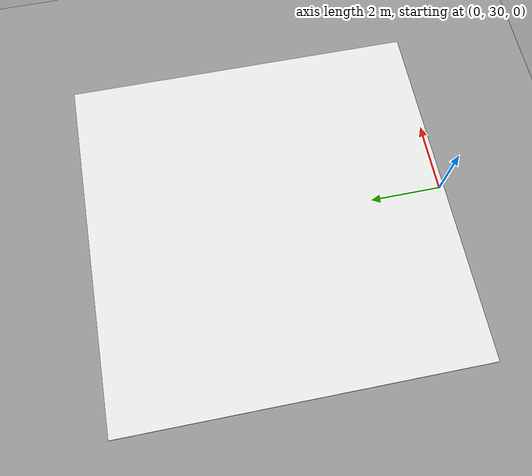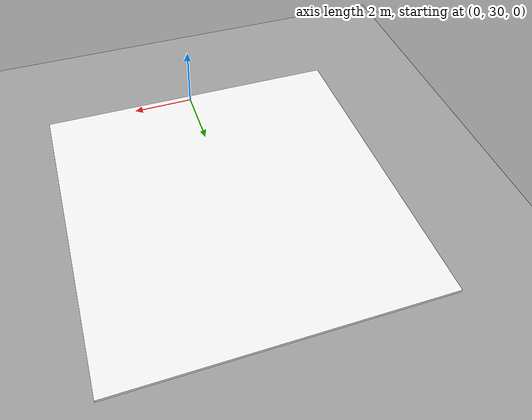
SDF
<sdf version="1.6">
 <world name="default">
  <light name="sun" type="directional">
   <pose>0 0 10 0 -0 0</pose>
   <diffuse>0.8 0.8 0.8 1</diffuse>
   <specular>0.2 0.2 0.2 1</specular>
   <attenuation>
    <range>1000</range>
    <constant>0.9</constant>
    <linear>0.01</linear>
    <quadratic>0.001</quadratic>
   </attenuation>
   <direction>-0.5 0.1 -0.9</direction>
  </light>
  <gravity>0 0 -9.8</gravity>
  <magnetic_field>6e-06 2.3e-05 -4.2e-05</magnetic_field>
  <atmosphere type="adiabatic"/>
  <physics name="default_physics" default="0" type="ode">
   <max_step_size>0.001</max_step_size>
   <real_time_factor>1</real_time_factor>
   <real_time_update_rate>1000</real_time_update_rate>
  </physics>
  <scene><ambient>0.4 0.4 0.4 1</ambient><background>0.7 0.7 0.7 1</background><shadows>1</shadows></scene>
  <spherical_coordinates>
   <surface_model>EARTH_WGS84</surface_model>
   <latitude_deg>0</latitude_deg>
   <longitude_deg>0</longitude_deg>
   <elevation>0</elevation>
   <heading_deg>0</heading_deg>
  </spherical_coordinates>
  <model name="Arena100x60">
   <link name="link_0">
    <pose>-0.324939 -17.8056 -0.257254 0 -0 0</pose>
    <inertial>
     <mass>100</mass>
     <inertia>
      <ixx>0.166667</ixx>
      <ixy>0</ixy>
      <ixz>0</ixz>
      <iyy>0.166667</iyy>
      <iyz>0</iyz>
      <izz>0.166667</izz>
     </inertia>
    </inertial>
    <visual name="visual">
     <geometry><mesh><uri>/home/varun/MBZIRC_Arena/Arena100x60.dae</uri><scale>1 1 1</scale></mesh></geometry>
     <material>
      <lighting>1</lighting>
      <script><uri>file://media/materials/scripts/gazebo.material</uri><name>Gazebo/Grey</name></script>
      <ambient>0.3 0.3 0.3 1</ambient>
      <diffuse>0.7 0.7 0.7 1</diffuse>
      <specular>0.01 0.01 0.01 1</specular>
      <emissive>0 0 0 1</emissive>
      <shader type="vertex"><normal_map>__default__</normal_map></shader>
     </material>
    </visual>
    <collision name="collision">
     <geometry><mesh><uri>/home/varun/MBZIRC_Arena/Arena100x60.dae</uri><scale>1 1 1</scale></mesh></geometry>
     <surface>
      <friction>
       <ode><mu>1</mu><mu2>1</mu2><fdir1>0 0 0</fdir1><slip1>0</slip1><slip2>0</slip2></ode>
       <torsional>
        <coefficient>1</coefficient>
        <patch_radius>0</patch_radius>
        <surface_radius>0</surface_radius>
        <use_patch_radius>1</use_patch_radius>
        <ode><slip>0</slip></ode>
       </torsional>
      </friction>
      <bounce><restitution_coefficient>0</restitution_coefficient><threshold>1e+06</threshold></bounce>
      <contact>
       <collide_without_contact>0</collide_without_contact>
       <collide_without_contact_bitmask>1</collide_without_contact_bitmask>
       <collide_bitmask>1</collide_bitmask>
       <ode>
        <soft_cfm>0</soft_cfm>
        <soft_erp>0.2</soft_erp>
        <kp>1e+13</kp>
        <kd>1</kd>
        <max_vel>0.01</max_vel>
        <min_depth>0</min_depth>
       </ode>
       <bullet>
        <split_impulse>1</split_impulse>
        <split_impulse_penetration_threshold>-0.01</split_impulse_penetration_threshold>
        <soft_cfm>0</soft_cfm>
        <soft_erp>0.2</soft_erp>
        <kp>1e+13</kp>
        <kd>1</kd>
       </bullet>
      </contact>
     </surface>
    </collision>
   </link>
   <link name="link_1">
    <pose>0.414939 17.8056 -0.142746 0 -0 0</pose>
    <inertial>
     <mass>100</mass>
     <inertia>
      <ixx>0.166667</ixx>
      <ixy>0</ixy>
      <ixz>0</ixz>
      <iyy>0.166667</iyy>
      <iyz>0</iyz>
      <izz>0.166667</izz>
     </inertia>
    </inertial>
    <visual name="visual">
     <geometry><mesh><uri>/home/varun/MBZIRC_Arena/StartLocation.dae</uri><scale>1 1 1</scale></mesh></geometry>
     <material>
      <lighting>1</lighting>
      <script><uri>file://media/materials/scripts/gazebo.material</uri><name>Gazebo/White</name></script>
      <ambient>0.3 0.3 0.3 1</ambient>
      <diffuse>0.7 0.7 0.7 1</diffuse>
      <specular>0.01 0.01 0.01 1</specular>
      <emissive>0 0 0 1</emissive>
      <shader type="vertex"><normal_map>__default__</normal_map></shader>
     </material>
    </visual>
    <collision name="collision">
     <geometry><mesh><uri>/home/varun/MBZIRC_Arena/StartLocation.dae</uri><scale>1 1 1</scale></mesh></geometry>
     <surface>
      <friction>
       <ode><mu>1</mu><mu2>1</mu2><fdir1>0 0 0</fdir1><slip1>0</slip1><slip2>0</slip2></ode>
       <torsional>
        <coefficient>1</coefficient>
        <patch_radius>0</patch_radius>
        <surface_radius>0</surface_radius>
        <use_patch_radius>1</use_patch_radius>
        <ode><slip>0</slip></ode>
       </torsional>
      </friction>
      <bounce><restitution_coefficient>0</restitution_coefficient><threshold>1e+06</threshold></bounce>
      <contact>
       <collide_without_contact>0</collide_without_contact>
       <collide_without_contact_bitmask>1</collide_without_contact_bitmask>
       <collide_bitmask>1</collide_bitmask>
       <ode>
        <soft_cfm>0</soft_cfm>
        <soft_erp>0.2</soft_erp>
        <kp>1e+13</kp>
        <kd>1</kd>
        <max_vel>0.01</max_vel>
        <min_depth>0</min_depth>
       </ode>
       <bullet>
        <split_impulse>1</split_impulse>
        <split_impulse_penetration_threshold>-0.01</split_impulse_penetration_threshold>
        <soft_cfm>0</soft_cfm>
        <soft_erp>0.2</soft_erp>
        <kp>1e+13</kp>
        <kd>1</kd>
       </bullet>
      </contact>
     </surface>
    </collision>
   </link>
   <static>1</static>
   <pose>-0.41446 17.1112 0.163667 0 -0 0</pose>
  </model>
 </world>
</sdf>
